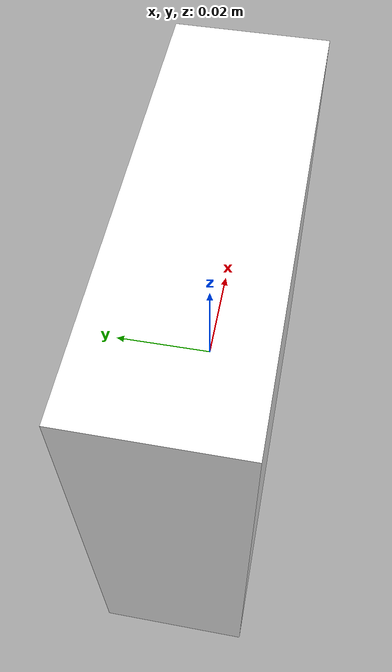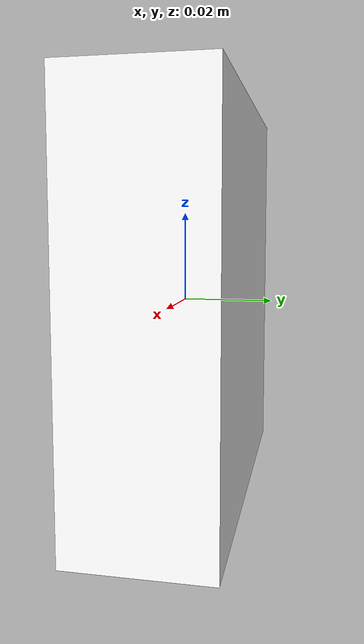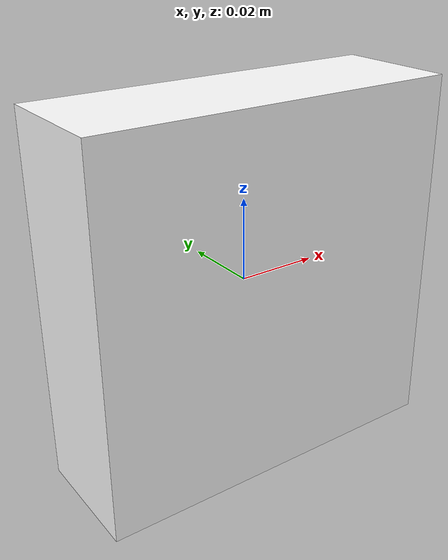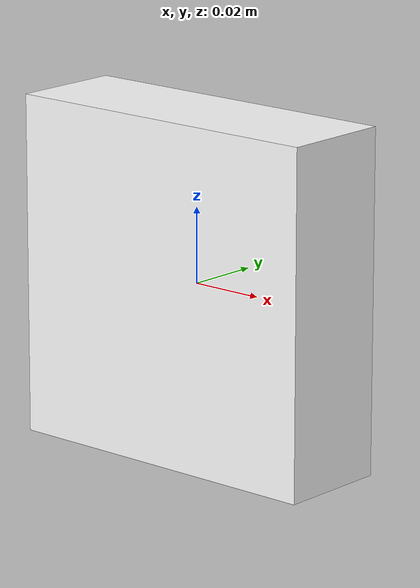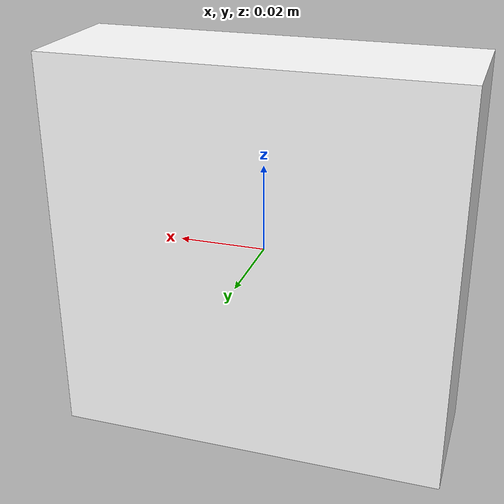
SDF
<?xml version="1.0" ?>

<sdf version="1.5">

	<model name="alvar_target">

		<!-- Give the base link a unique name -->
		<link name="base">

			<!-- Offset the base -->
			<pose>0 0 0 0 0 0</pose>
			<enable_wind>0</enable_wind>
			<kinematic>0</kinematic>

			<!-- Visual Properties -->
			<collision name="collision">
				<geometry>
					<mesh>
						<uri>model://alvar_target/meshes/alvarTag.dae</uri>
					</mesh>
				</geometry>
			</collision>

			<!-- Visual Properties -->
			<visual name="visual">
				<geometry>
					<mesh>
						<uri>model://alvar_target/meshes/alvarTag.dae</uri>
					</mesh>
				</geometry>
				<material>
					<script>
						<uri>model://alvar_target/materials/scripts</uri>
						<uri>model://alvar_target/materials/textures</uri>
						<name>Hospital/tag</name>
					</script>
					<ambient>1.0 1.0 1.0 1</ambient>
					<shader type='vertex'>
						<normal_map>__default__</normal_map>
					</shader>
					<diffuse>1 1 1 1</diffuse>
					<specular>0 0 0 1</specular>
					<emissive>0 0 0 1</emissive>
				</material>
			</visual>
		</link>

	</model>

</sdf>
